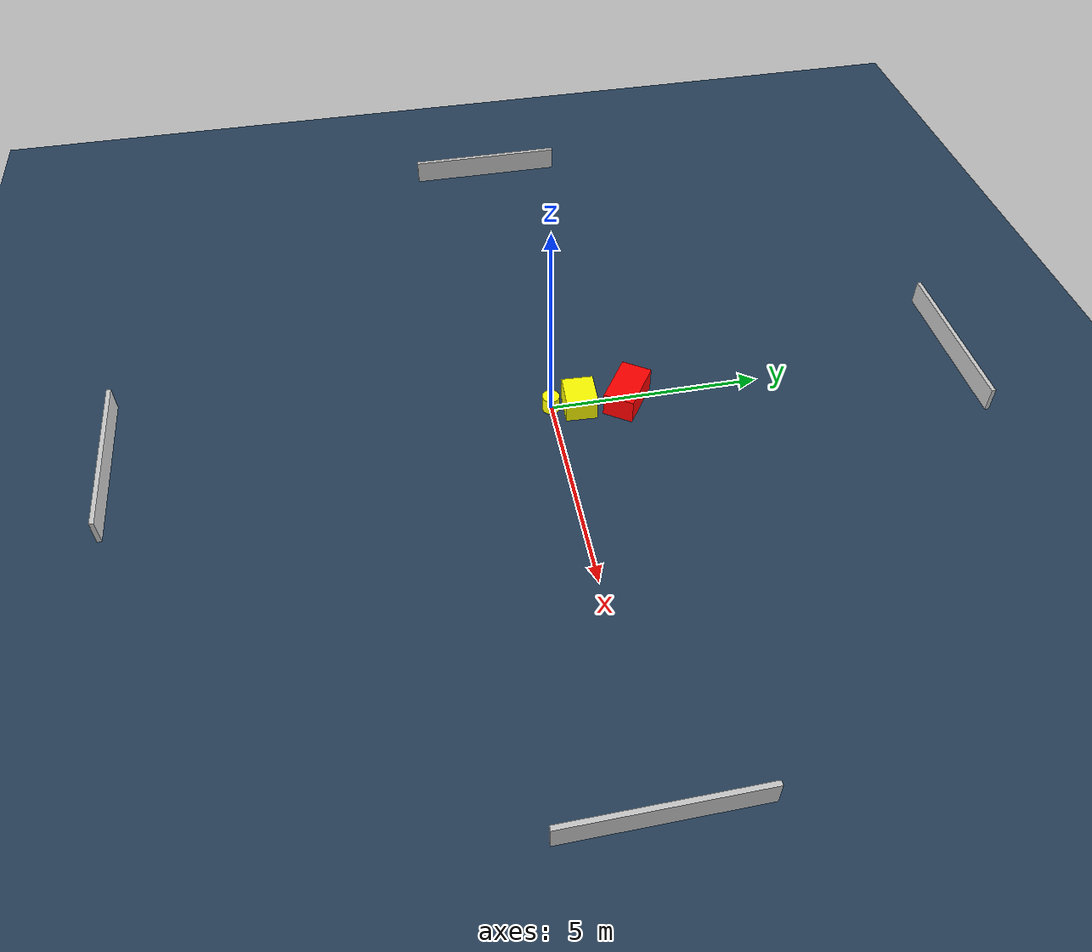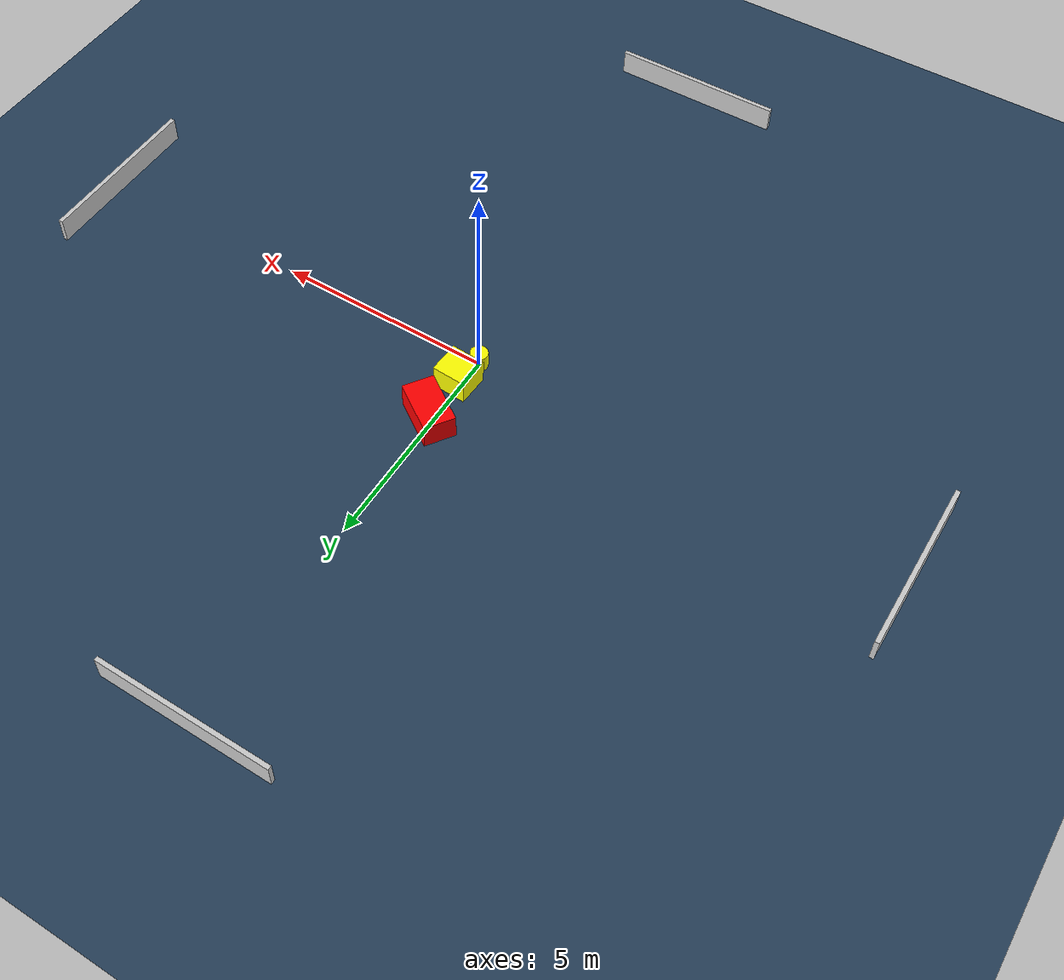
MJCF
<?xml version="1.0" ?>
<mujoco model="generated_environment">
  <option timestep="0.01" integrator="RK4" cone="elliptic"/>
  <default>
    <geom density="1"/>
  </default>
  <asset>
    <texture builtin="gradient" height="3072" name="skybox" rgb1="0.3 0.5 0.7" rgb2="0 0 0" type="skybox" width="512"/>
    <texture builtin="checker" height="300" name="groundplane" rgb1="0.2 0.3 0.4" rgb2="0.1 0.2 0.3" type="2d" width="300"/>
    <material name="groundplane" reflectance="0.2" texrepeat="5 5" texture="groundplane"/>
  </asset>
  <worldbody>
    <light dir="0 0 -1" directional="true" pos="0 0 1.5"/>
    <geom condim="3" friction="0.5 0.005 0.001" material="groundplane" name="floor" pos="0 0 0" size="0 0 0.05" type="plane"/>
    <body name="walls">
      <geom name="wall_1" condim="4" pos="-10.0 0.0 0.3" rgba="0.800000011920929 0.800000011920929 0.800000011920929 1.0" size="0.05 2.0 0.3" type="box"/>
      <geom name="wall_2" condim="4" pos="10.0 0.0 0.3" rgba="0.800000011920929 0.800000011920929 0.800000011920929 1.0" size="0.05 2.0 0.3" type="box"/>
      <geom name="wall_3" condim="4" pos="0.0 -10.0 0.3" rgba="0.800000011920929 0.800000011920929 0.800000011920929 1.0" size="2.0 0.05 0.3" type="box"/>
      <geom name="wall_4" condim="4" pos="0.0 10.0 0.3" rgba="0.800000011920929 0.800000011920929 0.800000011920929 1.0" size="2.0 0.05 0.3" type="box"/>
    </body>
    <body name="robot">
      <joint name="joint_x" type="slide" pos="0 0 0" axis="1 0 0"/>
      <joint name="joint_y" type="slide" pos="0 0 0" axis="0 1 0"/>
      <geom name="robot" type="cylinder" pos="0.0 0.0 0.2" size="0.2 0.2 0.0" mass="5.0" friction="1.0 0.005 0.0001" condim="4" rgba="1.0 1.0 0.0 1.0"/>
    </body>
    <body name="obstacle_1_movable">
      <geom name="obstacle_1_movable" condim="4" pos="0.10695048196091467 0.6519403586313823 0.3" euler="0 0 87.08736114722218" friction="0.0 0.005 0.001" rgba="1.0 1.0 0.0 1.0" size="0.3662116440858665 0.38761019498646276 0.3" type="box" mass="0.1"/>
      <joint type="free"/>
    </body>
    <body name="obstacle_2_static">
      <geom name="obstacle_2_static" condim="4" pos="0.09869686395461726 1.7981816044019665 0.3" euler="0 0 235.64583706749403" friction="0.0 0.005 0.001" rgba="1.0 0.0 0.0 1.0" size="0.35937412881244 0.6080048098907225 0.3" type="box"/>
    </body>
  </worldbody>
  <actuator>
    <motor name="actuator_x" joint="joint_x" gear="1" ctrlrange="-1 1"/>
    <motor name="actuator_y" joint="joint_y" gear="1" ctrlrange="-1 1"/>
  </actuator>
</mujoco>
